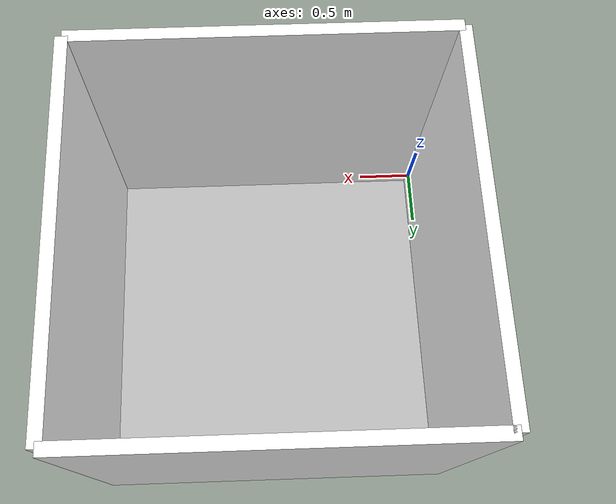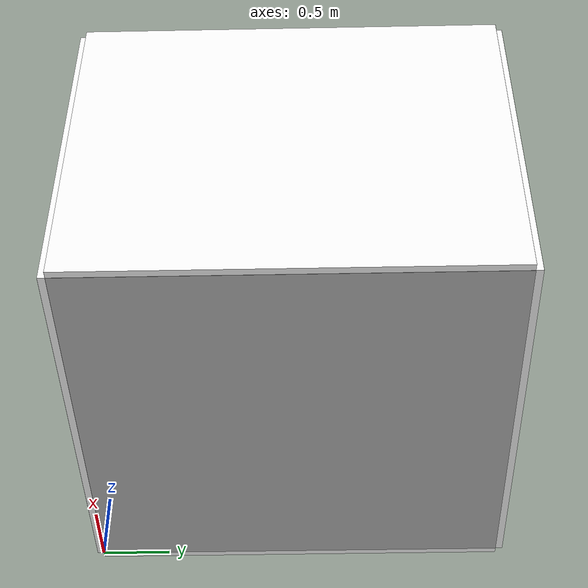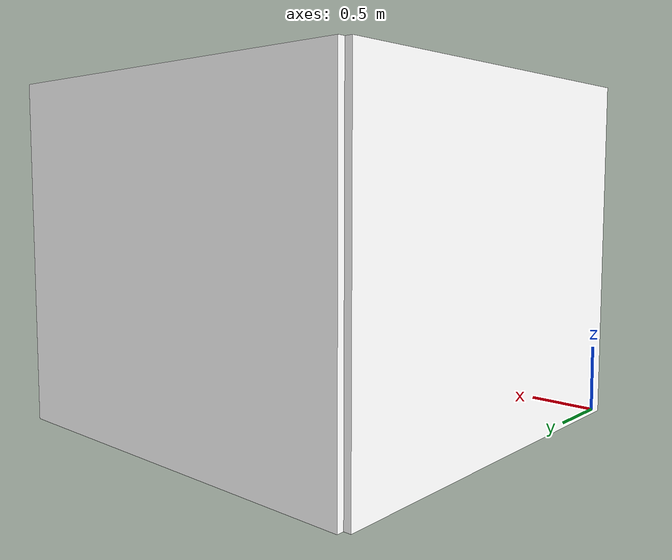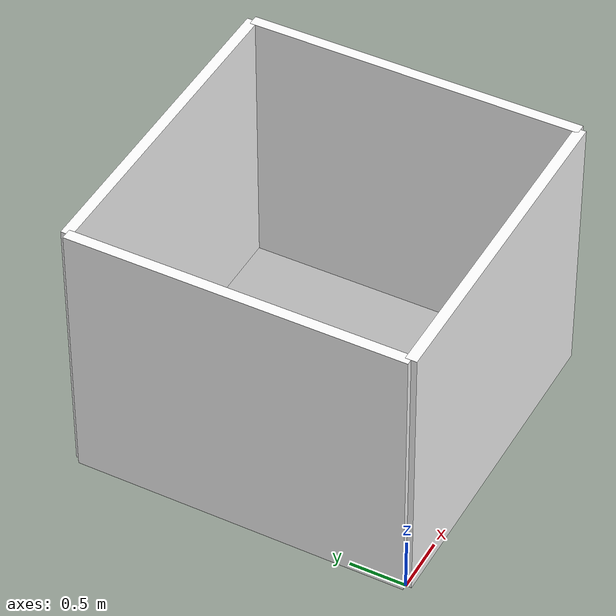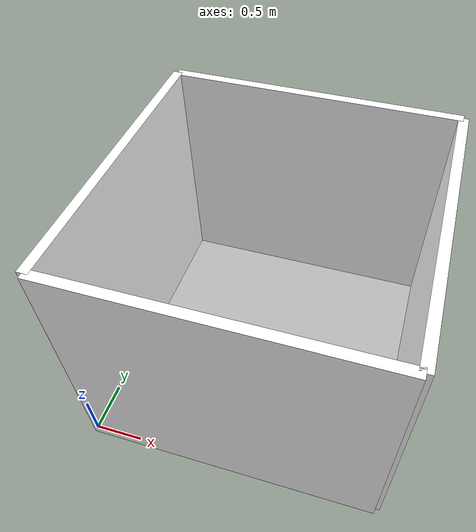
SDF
<?xml version="1.0" ?>
<sdf version="1.6">
  <model name="test">
    <static>true</static>
        <link name="floor">
            <pose>1.5 1.5 0 0 0 0</pose>
            <collision name="floor_collision">
                <geometry>
                <plane>
                    <normal>0 0 1</normal>
                    <size>3.0 3.0</size>
                </plane>
                </geometry>
            </collision>
            <visual name="floor_visual">
                <geometry>
                <plane>
                    <normal>0 0 1</normal>
                    <size>3.0 3.0</size>
                </plane>
                </geometry>
            </visual>
        </link>    <link name="wall_0">
      <pose>1.5 0.0 1.25 0 0 0</pose>
      <collision name="wall_0_collision">
        <geometry>
          <box>
            <size>3.0 0.1 2.5</size>
          </box>
        </geometry>
      </collision>
      <visual name="wall_0_visual">
        <geometry>
          <box>
            <size>3.0 0.1 2.5</size>
          </box>
        </geometry>
        <material>
          <ambient>1 1 1 1</ambient>
          <diffuse>1 1 1 1</diffuse>
          <specular>0.1 0.1 0.1 1</specular>
          <emissive>0 0 0 1</emissive>
        </material>
      </visual>
    </link>    <link name="wall_1">
      <pose>1.5 3.0 1.25 0 0 0</pose>
      <collision name="wall_1_collision">
        <geometry>
          <box>
            <size>3.0 0.1 2.5</size>
          </box>
        </geometry>
      </collision>
      <visual name="wall_1_visual">
        <geometry>
          <box>
            <size>3.0 0.1 2.5</size>
          </box>
        </geometry>
        <material>
          <ambient>1 1 1 1</ambient>
          <diffuse>1 1 1 1</diffuse>
          <specular>0.1 0.1 0.1 1</specular>
          <emissive>0 0 0 1</emissive>
        </material>
      </visual>
    </link>    <link name="wall_2">
      <pose>0.0 1.5 1.25 0 0 1.5707963267948966</pose>
      <collision name="wall_2_collision">
        <geometry>
          <box>
            <size>3.0 0.1 2.5</size>
          </box>
        </geometry>
      </collision>
      <visual name="wall_2_visual">
        <geometry>
          <box>
            <size>3.0 0.1 2.5</size>
          </box>
        </geometry>
        <material>
          <ambient>1 1 1 1</ambient>
          <diffuse>1 1 1 1</diffuse>
          <specular>0.1 0.1 0.1 1</specular>
          <emissive>0 0 0 1</emissive>
        </material>
      </visual>
    </link>    <link name="wall_3">
      <pose>3.0 1.5 1.25 0 0 1.5707963267948966</pose>
      <collision name="wall_3_collision">
        <geometry>
          <box>
            <size>3.0 0.1 2.5</size>
          </box>
        </geometry>
      </collision>
      <visual name="wall_3_visual">
        <geometry>
          <box>
            <size>3.0 0.1 2.5</size>
          </box>
        </geometry>
        <material>
          <ambient>1 1 1 1</ambient>
          <diffuse>1 1 1 1</diffuse>
          <specular>0.1 0.1 0.1 1</specular>
          <emissive>0 0 0 1</emissive>
        </material>
      </visual>
    </link>
  </model>
</sdf>
